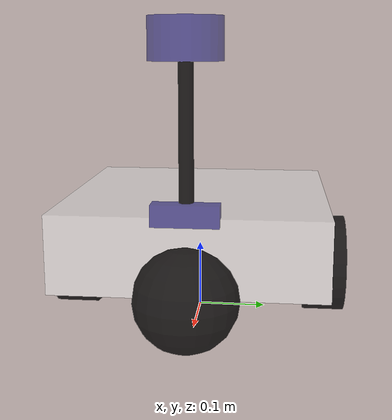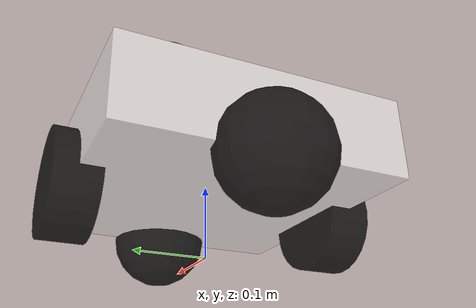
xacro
<?xml version="1.0"?>
<robot xmlns:xacro="http://www.ros.org/wiki/xacro" name="fishbot">
    <!-- 引入颜色材质 -->
    <xacro:include filename="$(find fishbot_description)/urdf/fishbot/color_materials.xacro" />
    <!-- 引入通用惯性参数 -->
    <xacro:include filename="$(find fishbot_description)/urdf/fishbot/common_inertial.xacro"/>
    <!-- 引入基础结构-1 -->
    <xacro:include filename="$(find fishbot_description)/urdf/fishbot/base.urdf.xacro" />
    <!-- 引入基础结构-2 -->
    <xacro:include filename="$(find fishbot_description)/urdf/fishbot/sensor/camera.urdf.xacro" />
    <xacro:include filename="$(find fishbot_description)/urdf/fishbot/sensor/laser.urdf.xacro" />
    <xacro:include filename="$(find fishbot_description)/urdf/fishbot/sensor/imu.urdf.xacro" />
    <!-- 引入执行器 -->
    <xacro:include filename="$(find fishbot_description)/urdf/fishbot/actuator/wheel.urdf.xacro" />
    <xacro:include filename="$(find fishbot_description)/urdf/fishbot/actuator/caster.urdf.xacro" />
    <!-- 插件 -->
    <xacro:include filename="$(find fishbot_description)/urdf/fishbot/plugins/gazebo_sensor_plugin.xacro" />
    <xacro:include filename="$(find fishbot_description)/urdf/fishbot/fishbot.ros2_control.xacro" />

    <!-- 基础结构相关动态参数 -->
    <xacro:base_xacro x="0.38" y="0.38" z="0.11" />
    <xacro:camera_xacro xyz="0.19 0 0.06" />
    <xacro:laser_xacro xyz="0.18 0 0.155" />
    <xacro:imu_xacro xyz="0 0 0.03"/>

    <!-- 执行器相关动态参数 -->
    <!-- 对应的控制器也要修改,保持轮子和实际建模一致fishbot_ros2_controller.yaml -->
    <xacro:wheel_xacro wheel_name="left_wheel" xyz="0 0.19 -0.055" />
    <xacro:wheel_xacro wheel_name="right_wheel" xyz="0 -0.19 -0.055" />
    <xacro:caster_xacro caster_name="front_caster" xyz="0.19 0 -0.055" />
    <xacro:caster_xacro caster_name="back_caster" xyz="-0.19 0 -0.055" />
    <!-- 插件相关动态参数 -->
    <xacro:gazebo_sensor_plugin />
    <xacro:fishbot_ros2_control />
</robot>

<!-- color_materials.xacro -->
<robot xmlns:xacro="http://www.ros.org/wiki/xacro">
    <!-- 基础通用材质 透明度设置为0.5-->
    <material name="white">
        <color rgba="1 1 1 0.5"/>
    </material>

    <material name="dark_blue">
        <color rgba="0 0 0.52 0.5"/>
    </material>

    <material name="black">
        <color rgba="0 0 0 0.8"/>
    </material>

    <!-- 彩虹七色材质 透明度0.5 -->
    <material name="red">
        <color rgba="1 0 0 0.5"/>
    </material>
    <material name="orange">
        <color rgba="1 0.5 0 0.5"/>
    </material>
    <material name="yellow">
        <color rgba="1 1 0 0.5"/>
    </material>
    <material name="green">
        <color rgba="0 1 0 0.5"/>
    </material>
    <material name="cyan">
        <color rgba="0 1 1 0.5"/>
    </material>
    <material name="blue">
        <color rgba="0 0 1 0.5"/>
    </material>
    <material name="purple">
        <color rgba="0.6 0 1 0.5"/>
    </material>
</robot>

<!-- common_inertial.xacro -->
<robot xmlns:xacro="http://www.ros.org/wiki/xacro">
    <!-- 公共惯性属性宏定义 -->

    <xacro:macro name="box_inertia" params="m w h d">
        <inertial>
            <mass value="${float(m)}"/>
            <inertia
                ixx="${float(m)/12.0 * (float(h)*float(h) + float(d)*float(d))}"
                ixy="0.0"
                ixz="0.0"
                iyy="${float(m)/12.0 * (float(w)*float(w) + float(d)*float(d))}"
                iyz="0.0"
                izz="${float(m)/12.0 * (float(w)*float(w) + float(h)*float(h))}"/>
        </inertial>
    </xacro:macro>

    <xacro:macro name="cylinder_inertia" params="m r h">
        <inertial>
            <mass value="${float(m)}"/>
            <inertia
                ixx="${float(m)/12.0 * (3.0*float(r)*float(r) + float(h)*float(h))}"
                ixy="0.0"
                ixz="0.0"
                iyy="${float(m)/12.0 * (3.0*float(r)*float(r) + float(h)*float(h))}"
                iyz="0.0"
                izz="${float(m)/2.0 * float(r)*float(r)}"/>
        </inertial>
    </xacro:macro>

    <xacro:macro name="sphere_inertia" params="m r">
        <inertial>
            <mass value="${float(m)}"/>
            <inertia
                ixx="${2.0/5.0 * float(m)*float(r)*float(r)}"
                ixy="0.0"
                ixz="0.0"
                iyy="${2.0/5.0 * float(m)*float(r)*float(r)}"
                iyz="0.0"
                izz="${2.0/5.0 * float(m)*float(r)*float(r)}"/>
        </inertial>
    </xacro:macro>
</robot>

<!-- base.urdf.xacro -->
<robot xmlns:xacro="http://www.ros.org/wiki/xacro">

    <xacro:macro name="base_xacro" params="x y z">
        <!-- 虚拟部件原点，贴合地面专用 -->
        <link name="base_footprint" />

        <!-- 基础链接 -->
        <link name="base_link">
            <visual>
                <origin xyz="0 0 0" rpy="0 0 0"/>
                <geometry>
                    <box size="${x} ${y} ${z}"/>
                </geometry>
                <material name="white"/>
            </visual>
            <!-- 碰撞属性 -->
            <collision>
                <origin xyz="0 0 0" rpy="0 0 0"/>
                <geometry>
                    <box size="${x} ${y} ${z}"/>
                </geometry>
            </collision>
        <!-- 引入惯性和质量矩阵参数 -->
        <xacro:box_inertia m="3.5" w="${x}" h="${y}" d="${z}" />
        </link>

        <joint name="base_footprint_joint" type="fixed">
            <parent link="base_footprint"/>
            <child link="base_link"/>
            <origin xyz="0 0 0.129" rpy="0 0 0"/>
        </joint>
    </xacro:macro>
</robot>

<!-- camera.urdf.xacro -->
<robot xmlns:xacro="http://www.ros.org/wiki/xacro">
    <xacro:macro name="camera_xacro" params="xyz" >
        <link name="camera_link">
            <visual>
                <origin xyz="0 0 0" rpy="0 0 1.57"/>
                <geometry>
                    <box size="0.09 0.026 0.029"/>
                </geometry>
                <material name="dark_blue"/>
            </visual>
        </link>
        <link name="camera_optical_link"></link>

        <joint name="camera_joint" type="fixed">
            <parent link="base_link"/>
            <child link="camera_link"/>
            <origin xyz="${xyz}" rpy="0 0 0"/>
        </joint>
        <joint name="camera_optical_joint" type="fixed">
            <parent link="camera_link"/>
            <child link="camera_optical_link"/>
            <origin xyz="0 0 0" rpy="${-pi/2} 0 ${-pi/2}"/>
        </joint>
    </xacro:macro>
</robot>

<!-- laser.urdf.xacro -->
<robot xmlns:xacro="http://www.ros.org/wiki/xacro">

    <xacro:macro name="laser_xacro" params="xyz">
        <!-- 激光雷达链接 -->
        <link name="laser_link">
            <visual>
                <origin xyz="0 0 0" rpy="0 0 0"/>
                <geometry>
                    <cylinder radius="0.0484" length="0.055"/>
                </geometry>
                <material name="dark_blue"/>
            </visual>
        </link>
        <!-- 雷达支撑杆 -->
        <link name="laser_support_link">
            <visual>
                <origin xyz="0 0 0" rpy="0 0 0"/>
                <geometry>
                    <cylinder radius="0.01" length="0.2"/>
                </geometry>
                <material name="black"/>
            </visual>
        </link>

        <joint name="laser_joint" type="fixed">
            <parent link="laser_support_link"/>
            <child link="laser_link"/>
            <origin xyz="0 0 0.1275" rpy="0 0 0"/>
        </joint>

        <joint name="laser_support_joint" type="fixed">
            <parent link="base_link"/>
            <child link="laser_support_link"/>
            <origin xyz="${xyz}" rpy="0 0 0"/>
        </joint>
        <!-- gazebo材质颜色定义 -->
        <gazebo reference="laser_link">
            <material>Gazebo/Blue</material>
        </gazebo>
        <gazebo reference="laser_support_link">
            <material>Gazebo/Red</material>
        </gazebo>
    </xacro:macro>
</robot>

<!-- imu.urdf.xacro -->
<robot xmlns:xacro="http://www.ros.org/wiki/xacro">

    <xacro:macro name="imu_xacro" params="xyz">
        <link name="imu_link">
            <visual>
                <origin xyz="0 0 0" rpy="0 0 0"/>
                <geometry>
                    <box size="0.03 0.02 0.0008"/>
                </geometry>
                <material name="red"/>
            </visual>
        </link>

        <joint name="imu_joint" type="fixed">
            <parent link="base_link"/>
            <child link="imu_link"/>
            <origin xyz="${xyz}" rpy="0 0 0"/>
        </joint>
    </xacro:macro>
</robot>

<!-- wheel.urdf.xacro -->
<robot xmlns:xacro="http://www.ros.org/wiki/xacro">
    <xacro:macro name="wheel_xacro" params="wheel_name xyz">
        <link name="${wheel_name}_link">
            <visual>
                <origin xyz="0 0 0" rpy="1.5708 0 0"/>
                <geometry>
                    <cylinder radius="0.072" length="0.06"/>
                </geometry>
                <material name="black"/>
            </visual>

            <collision>
                <origin xyz="0 0 0" rpy="1.5708 0 0"/>
                    <geometry>
                        <cylinder radius="0.072" length="0.06"/>
                    </geometry>
            </collision>

            <xacro:cylinder_inertia m="0.12" r="0.072" h="0.06" />
        </link>
        <joint name="${wheel_name}_joint" type="continuous">
            <parent link="base_link"/>
            <child link="${wheel_name}_link"/>
            <origin xyz="${xyz}" rpy="0 0 0"/>
            <axis xyz="0 1 0"/>
        </joint>

        <gazebo reference="${wheel_name}_link">
            <!-- 沿轮子滚动方向的摩擦系数（纵向摩擦） -->
            <mu1 value="1.0"/>
            <!-- 垂直于轮子滚动方向的摩擦系数（横向摩擦） -->
            <mu2 value="1.0"/>
            <!-- 法向刚度 -->
            <k1 value="100000.0"/>
            <!-- 切向刚度 -->
            <k2 value="1.0"/>
        </gazebo>
    </xacro:macro>
</robot>

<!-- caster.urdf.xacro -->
<robot xmlns:xacro="http://www.ros.org/wiki/xacro">

    <xacro:macro name="caster_xacro" params="caster_name xyz">
        <link name="${caster_name}_link">
            <visual>
                <origin xyz="0 0 0" rpy="0 0 0"/>
                <geometry>
                    <sphere radius="0.072"/>
                </geometry>
                <material name="black"/>
            </visual>
            <!-- 碰撞属性 -->
            <collision>
                <origin xyz="0 0 0" rpy="0 0 0"/>
                    <geometry>
                        <sphere radius="0.072"/>
                    </geometry>
            </collision>
            <xacro:sphere_inertia m="0.12" r="0.072" />
        </link>
        <joint name="${caster_name}_joint" type="fixed">
            <parent link="base_link"/>
            <child link="${caster_name}_link"/>
            <origin xyz="${xyz}" rpy="0 0 0"/>
        </joint>

        <gazebo reference="${caster_name}_link">
            <!-- 沿轮子滚动方向的摩擦系数（纵向摩擦） -->
            <mu1 value="0.0"/>
            <!-- 垂直于轮子滚动方向的摩擦系数（横向摩擦） -->
            <mu2 value="0.0"/>
            <!-- 法向刚度 -->
            <k1 value="0"/>
            <!-- 切向刚度 -->
            <k2 value="0"/>
        </gazebo>

    </xacro:macro>
</robot>
